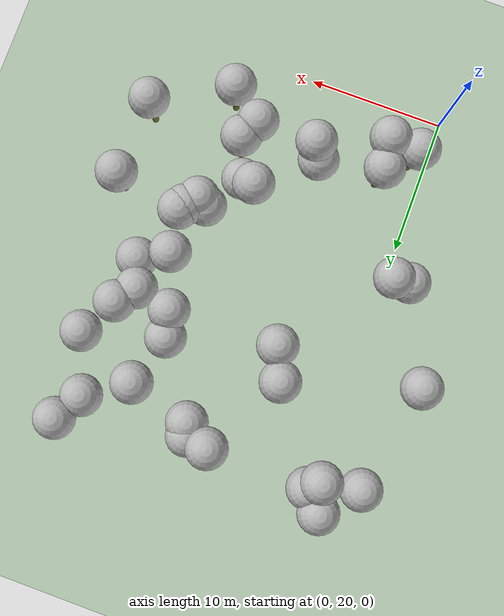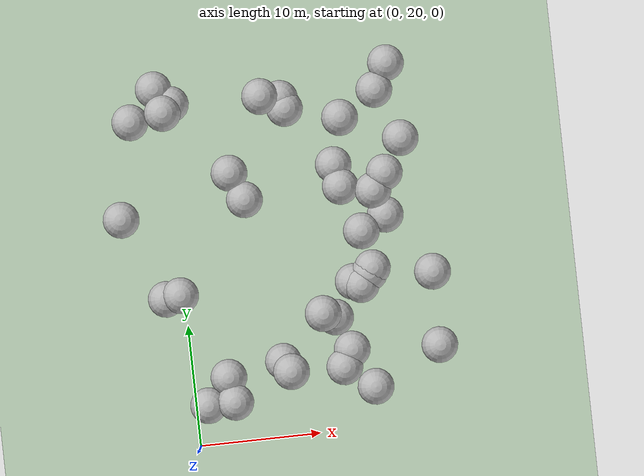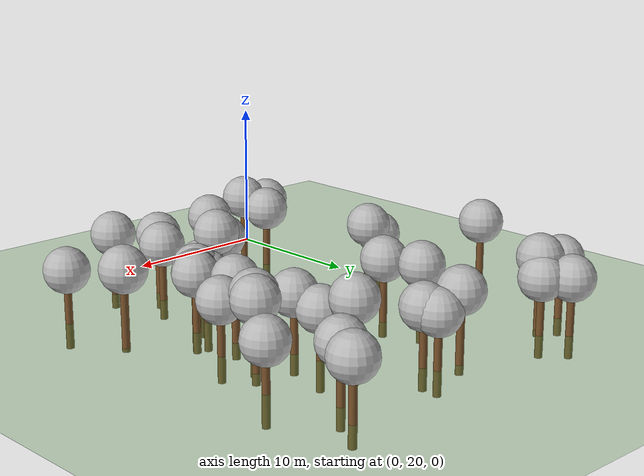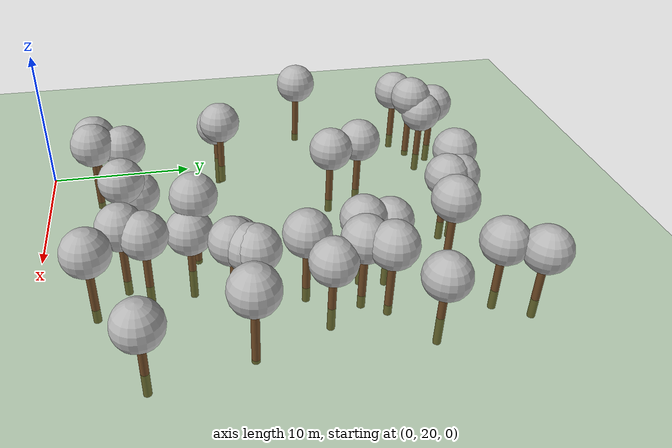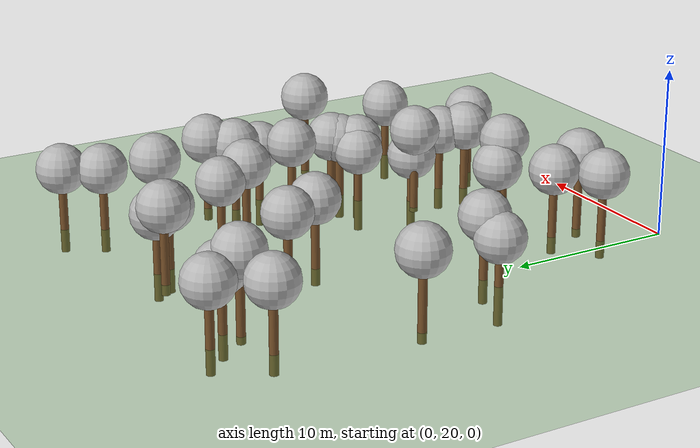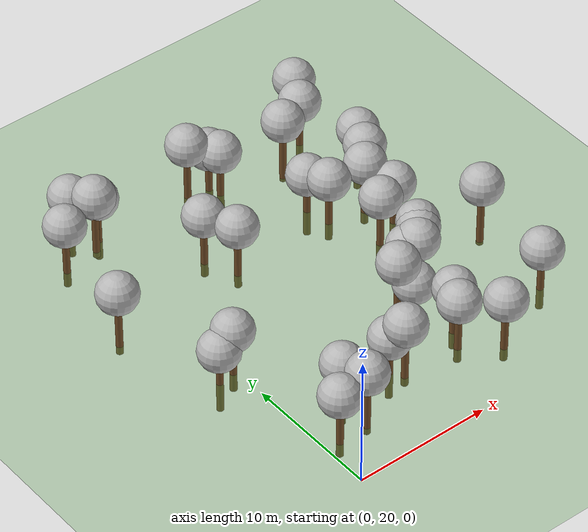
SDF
<sdf version="1.5">
 <world name="default">
  <model name="tree_simple477">
   <static>1</static>
   <link name="link">
    <pose>0 0 0.1 0 -0 0</pose>
    <collision name="collision_trunk">
     <pose>0 0 2 0 -0 0</pose>
     <geometry><cylinder><radius>0.25</radius><length>4</length></cylinder></geometry>
    </collision>
    <collision name="collision_treetop">
     <pose>0 0 5.2 0 -0 0</pose>
     <geometry><sphere><radius>1.5</radius></sphere></geometry>
    </collision>
    <visual name="trunk">
     <pose>0 0 2 0 -0 0</pose>
     <geometry><cylinder><radius>0.25</radius><length>4</length></cylinder></geometry>
     <material>
      <script>
       <uri>model://tree_simple/scripts</uri>
       <uri>model://tree_simple/materials/textures</uri>
       <name>TreeSimple/Trunk</name>
      </script>
     </material>
    </visual>
    <visual name="treetop">
     <pose>0 0 5.2 0 -0 0</pose>
     <geometry><sphere><radius>1.5</radius></sphere></geometry>
     <material>
      <script>
       <uri>model://tree_simple/scripts</uri>
       <uri>model://tree_simple/materials/textures</uri>
       <name>TreeSimple/Treetop</name>
      </script>
     </material>
    </visual>
   </link>
   <pose>-0.22927085135 32.6495918535 -1.5772530974305565 0 -0 0</pose>
  </model>
  <model name="tree_simple457">
   <static>1</static>
   <link name="link">
    <pose>0 0 0.1 0 -0 0</pose>
    <collision name="collision_trunk">
     <pose>0 0 2 0 -0 0</pose>
     <geometry><cylinder><radius>0.25</radius><length>4</length></cylinder></geometry>
    </collision>
    <collision name="collision_treetop">
     <pose>0 0 5.2 0 -0 0</pose>
     <geometry><sphere><radius>1.5</radius></sphere></geometry>
    </collision>
    <visual name="trunk">
     <pose>0 0 2 0 -0 0</pose>
     <geometry><cylinder><radius>0.25</radius><length>4</length></cylinder></geometry>
     <material>
      <script>
       <uri>model://tree_simple/scripts</uri>
       <uri>model://tree_simple/materials/textures</uri>
       <name>TreeSimple/Trunk</name>
      </script>
     </material>
    </visual>
    <visual name="treetop">
     <pose>0 0 5.2 0 -0 0</pose>
     <geometry><sphere><radius>1.5</radius></sphere></geometry>
     <material>
      <script>
       <uri>model://tree_simple/scripts</uri>
       <uri>model://tree_simple/materials/textures</uri>
       <name>TreeSimple/Treetop</name>
      </script>
     </material>
    </visual>
   </link>
   <pose>13.2865883098 26.7984826025 -1.4923360255786282 0 -0 0</pose>
  </model>
  <model name="tree_simple445">
   <static>1</static>
   <link name="link">
    <pose>0 0 0.1 0 -0 0</pose>
    <collision name="collision_trunk">
     <pose>0 0 2 0 -0 0</pose>
     <geometry><cylinder><radius>0.25</radius><length>4</length></cylinder></geometry>
    </collision>
    <collision name="collision_treetop">
     <pose>0 0 5.2 0 -0 0</pose>
     <geometry><sphere><radius>1.5</radius></sphere></geometry>
    </collision>
    <visual name="trunk">
     <pose>0 0 2 0 -0 0</pose>
     <geometry><cylinder><radius>0.25</radius><length>4</length></cylinder></geometry>
     <material>
      <script>
       <uri>model://tree_simple/scripts</uri>
       <uri>model://tree_simple/materials/textures</uri>
       <name>TreeSimple/Trunk</name>
      </script>
     </material>
    </visual>
    <visual name="treetop">
     <pose>0 0 5.2 0 -0 0</pose>
     <geometry><sphere><radius>1.5</radius></sphere></geometry>
     <material>
      <script>
       <uri>model://tree_simple/scripts</uri>
       <uri>model://tree_simple/materials/textures</uri>
       <name>TreeSimple/Treetop</name>
      </script>
     </material>
    </visual>
   </link>
   <pose>17.3330924595 47.7477611906 -1.5642693876406155 0 -0 0</pose>
  </model>
  <model name="tree_simple443">
   <static>1</static>
   <link name="link">
    <pose>0 0 0.1 0 -0 0</pose>
    <collision name="collision_trunk">
     <pose>0 0 2 0 -0 0</pose>
     <geometry><cylinder><radius>0.25</radius><length>4</length></cylinder></geometry>
    </collision>
    <collision name="collision_treetop">
     <pose>0 0 5.2 0 -0 0</pose>
     <geometry><sphere><radius>1.5</radius></sphere></geometry>
    </collision>
    <visual name="trunk">
     <pose>0 0 2 0 -0 0</pose>
     <geometry><cylinder><radius>0.25</radius><length>4</length></cylinder></geometry>
     <material>
      <script>
       <uri>model://tree_simple/scripts</uri>
       <uri>model://tree_simple/materials/textures</uri>
       <name>TreeSimple/Trunk</name>
      </script>
     </material>
    </visual>
    <visual name="treetop">
     <pose>0 0 5.2 0 -0 0</pose>
     <geometry><sphere><radius>1.5</radius></sphere></geometry>
     <material>
      <script>
       <uri>model://tree_simple/scripts</uri>
       <uri>model://tree_simple/materials/textures</uri>
       <name>TreeSimple/Treetop</name>
      </script>
     </material>
    </visual>
   </link>
   <pose>20.4518447393 32.4372971603 -0.3842640488169702 0 -0 0</pose>
  </model>
  <model name="tree_simple419">
   <static>1</static>
   <link name="link">
    <pose>0 0 0.1 0 -0 0</pose>
    <collision name="collision_trunk">
     <pose>0 0 2 0 -0 0</pose>
     <geometry><cylinder><radius>0.25</radius><length>4</length></cylinder></geometry>
    </collision>
    <collision name="collision_treetop">
     <pose>0 0 5.2 0 -0 0</pose>
     <geometry><sphere><radius>1.5</radius></sphere></geometry>
    </collision>
    <visual name="trunk">
     <pose>0 0 2 0 -0 0</pose>
     <geometry><cylinder><radius>0.25</radius><length>4</length></cylinder></geometry>
     <material>
      <script>
       <uri>model://tree_simple/scripts</uri>
       <uri>model://tree_simple/materials/textures</uri>
       <name>TreeSimple/Trunk</name>
      </script>
     </material>
    </visual>
    <visual name="treetop">
     <pose>0 0 5.2 0 -0 0</pose>
     <geometry><sphere><radius>1.5</radius></sphere></geometry>
     <material>
      <script>
       <uri>model://tree_simple/scripts</uri>
       <uri>model://tree_simple/materials/textures</uri>
       <name>TreeSimple/Treetop</name>
      </script>
     </material>
    </visual>
   </link>
   <pose>15.0608261067 36.3391301174 -1.2262519506020633 0 -0 0</pose>
  </model>
  <model name="tree_simple413">
   <static>1</static>
   <link name="link">
    <pose>0 0 0.1 0 -0 0</pose>
    <collision name="collision_trunk">
     <pose>0 0 2 0 -0 0</pose>
     <geometry><cylinder><radius>0.25</radius><length>4</length></cylinder></geometry>
    </collision>
    <collision name="collision_treetop">
     <pose>0 0 5.2 0 -0 0</pose>
     <geometry><sphere><radius>1.5</radius></sphere></geometry>
    </collision>
    <visual name="trunk">
     <pose>0 0 2 0 -0 0</pose>
     <geometry><cylinder><radius>0.25</radius><length>4</length></cylinder></geometry>
     <material>
      <script>
       <uri>model://tree_simple/scripts</uri>
       <uri>model://tree_simple/materials/textures</uri>
       <name>TreeSimple/Trunk</name>
      </script>
     </material>
    </visual>
    <visual name="treetop">
     <pose>0 0 5.2 0 -0 0</pose>
     <geometry><sphere><radius>1.5</radius></sphere></geometry>
     <material>
      <script>
       <uri>model://tree_simple/scripts</uri>
       <uri>model://tree_simple/materials/textures</uri>
       <name>TreeSimple/Treetop</name>
      </script>
     </material>
    </visual>
   </link>
   <pose>4.79772995732 42.1907919742 -1.2238925994554648 0 -0 0</pose>
  </model>
  <model name="tree_simple405">
   <static>1</static>
   <link name="link">
    <pose>0 0 0.1 0 -0 0</pose>
    <collision name="collision_trunk">
     <pose>0 0 2 0 -0 0</pose>
     <geometry><cylinder><radius>0.25</radius><length>4</length></cylinder></geometry>
    </collision>
    <collision name="collision_treetop">
     <pose>0 0 5.2 0 -0 0</pose>
     <geometry><sphere><radius>1.5</radius></sphere></geometry>
    </collision>
    <visual name="trunk">
     <pose>0 0 2 0 -0 0</pose>
     <geometry><cylinder><radius>0.25</radius><length>4</length></cylinder></geometry>
     <material>
      <script>
       <uri>model://tree_simple/scripts</uri>
       <uri>model://tree_simple/materials/textures</uri>
       <name>TreeSimple/Trunk</name>
      </script>
     </material>
    </visual>
    <visual name="treetop">
     <pose>0 0 5.2 0 -0 0</pose>
     <geometry><sphere><radius>1.5</radius></sphere></geometry>
     <material>
      <script>
       <uri>model://tree_simple/scripts</uri>
       <uri>model://tree_simple/materials/textures</uri>
       <name>TreeSimple/Treetop</name>
      </script>
     </material>
    </visual>
   </link>
   <pose>13.9640568795 32.2793272532 -2.0949176637792855 0 -0 0</pose>
  </model>
  <model name="tree_simple401">
   <static>1</static>
   <link name="link">
    <pose>0 0 0.1 0 -0 0</pose>
    <collision name="collision_trunk">
     <pose>0 0 2 0 -0 0</pose>
     <geometry><cylinder><radius>0.25</radius><length>4</length></cylinder></geometry>
    </collision>
    <collision name="collision_treetop">
     <pose>0 0 5.2 0 -0 0</pose>
     <geometry><sphere><radius>1.5</radius></sphere></geometry>
    </collision>
    <visual name="trunk">
     <pose>0 0 2 0 -0 0</pose>
     <geometry><cylinder><radius>0.25</radius><length>4</length></cylinder></geometry>
     <material>
      <script>
       <uri>model://tree_simple/scripts</uri>
       <uri>model://tree_simple/materials/textures</uri>
       <name>TreeSimple/Trunk</name>
      </script>
     </material>
    </visual>
    <visual name="treetop">
     <pose>0 0 5.2 0 -0 0</pose>
     <geometry><sphere><radius>1.5</radius></sphere></geometry>
     <material>
      <script>
       <uri>model://tree_simple/scripts</uri>
       <uri>model://tree_simple/materials/textures</uri>
       <name>TreeSimple/Treetop</name>
      </script>
     </material>
    </visual>
   </link>
   <pose>18.5119614972 49.8300347258 -1.5573048596666181 0 -0 0</pose>
  </model>
  <model name="tree_simple381">
   <static>1</static>
   <link name="link">
    <pose>0 0 0.1 0 -0 0</pose>
    <collision name="collision_trunk">
     <pose>0 0 2 0 -0 0</pose>
     <geometry><cylinder><radius>0.25</radius><length>4</length></cylinder></geometry>
    </collision>
    <collision name="collision_treetop">
     <pose>0 0 5.2 0 -0 0</pose>
     <geometry><sphere><radius>1.5</radius></sphere></geometry>
    </collision>
    <visual name="trunk">
     <pose>0 0 2 0 -0 0</pose>
     <geometry><cylinder><radius>0.25</radius><length>4</length></cylinder></geometry>
     <material>
      <script>
       <uri>model://tree_simple/scripts</uri>
       <uri>model://tree_simple/materials/textures</uri>
       <name>TreeSimple/Trunk</name>
      </script>
     </material>
    </visual>
    <visual name="treetop">
     <pose>0 0 5.2 0 -0 0</pose>
     <geometry><sphere><radius>1.5</radius></sphere></geometry>
     <material>
      <script>
       <uri>model://tree_simple/scripts</uri>
       <uri>model://tree_simple/materials/textures</uri>
       <name>TreeSimple/Treetop</name>
      </script>
     </material>
    </visual>
   </link>
   <pose>14.598493672 31.9609585056 -1.598801833825723 0 -0 0</pose>
  </model>
  <model name="tree_simple372">
   <static>1</static>
   <link name="link">
    <pose>0 0 0.1 0 -0 0</pose>
    <collision name="collision_trunk">
     <pose>0 0 2 0 -0 0</pose>
     <geometry><cylinder><radius>0.25</radius><length>4</length></cylinder></geometry>
    </collision>
    <collision name="collision_treetop">
     <pose>0 0 5.2 0 -0 0</pose>
     <geometry><sphere><radius>1.5</radius></sphere></geometry>
    </collision>
    <visual name="trunk">
     <pose>0 0 2 0 -0 0</pose>
     <geometry><cylinder><radius>0.25</radius><length>4</length></cylinder></geometry>
     <material>
      <script>
       <uri>model://tree_simple/scripts</uri>
       <uri>model://tree_simple/materials/textures</uri>
       <name>TreeSimple/Trunk</name>
      </script>
     </material>
    </visual>
    <visual name="treetop">
     <pose>0 0 5.2 0 -0 0</pose>
     <geometry><sphere><radius>1.5</radius></sphere></geometry>
     <material>
      <script>
       <uri>model://tree_simple/scripts</uri>
       <uri>model://tree_simple/materials/textures</uri>
       <name>TreeSimple/Treetop</name>
      </script>
     </material>
    </visual>
   </link>
   <pose>19.0807104519 43.6051965294 -2.2103653135912835 0 -0 0</pose>
  </model>
  <model name="tree_simple367">
   <static>1</static>
   <link name="link">
    <pose>0 0 0.1 0 -0 0</pose>
    <collision name="collision_trunk">
     <pose>0 0 2 0 -0 0</pose>
     <geometry><cylinder><radius>0.25</radius><length>4</length></cylinder></geometry>
    </collision>
    <collision name="collision_treetop">
     <pose>0 0 5.2 0 -0 0</pose>
     <geometry><sphere><radius>1.5</radius></sphere></geometry>
    </collision>
    <visual name="trunk">
     <pose>0 0 2 0 -0 0</pose>
     <geometry><cylinder><radius>0.25</radius><length>4</length></cylinder></geometry>
     <material>
      <script>
       <uri>model://tree_simple/scripts</uri>
       <uri>model://tree_simple/materials/textures</uri>
       <name>TreeSimple/Trunk</name>
      </script>
     </material>
    </visual>
    <visual name="treetop">
     <pose>0 0 5.2 0 -0 0</pose>
     <geometry><sphere><radius>1.5</radius></sphere></geometry>
     <material>
      <script>
       <uri>model://tree_simple/scripts</uri>
       <uri>model://tree_simple/materials/textures</uri>
       <name>TreeSimple/Treetop</name>
      </script>
     </material>
    </visual>
   </link>
   <pose>14.2659299001 45.7179827091 -0.38302326977098944 0 -0 0</pose>
  </model>
  <model name="tree_simple365">
   <static>1</static>
   <link name="link">
    <pose>0 0 0.1 0 -0 0</pose>
    <collision name="collision_trunk">
     <pose>0 0 2 0 -0 0</pose>
     <geometry><cylinder><radius>0.25</radius><length>4</length></cylinder></geometry>
    </collision>
    <collision name="collision_treetop">
     <pose>0 0 5.2 0 -0 0</pose>
     <geometry><sphere><radius>1.5</radius></sphere></geometry>
    </collision>
    <visual name="trunk">
     <pose>0 0 2 0 -0 0</pose>
     <geometry><cylinder><radius>0.25</radius><length>4</length></cylinder></geometry>
     <material>
      <script>
       <uri>model://tree_simple/scripts</uri>
       <uri>model://tree_simple/materials/textures</uri>
       <name>TreeSimple/Trunk</name>
      </script>
     </material>
    </visual>
    <visual name="treetop">
     <pose>0 0 5.2 0 -0 0</pose>
     <geometry><sphere><radius>1.5</radius></sphere></geometry>
     <material>
      <script>
       <uri>model://tree_simple/scripts</uri>
       <uri>model://tree_simple/materials/textures</uri>
       <name>TreeSimple/Treetop</name>
      </script>
     </material>
    </visual>
   </link>
   <pose>7.96669325113 48.1339153876 -0.7691764376662982 0 -0 0</pose>
  </model>
  <model name="tree_simple356">
   <static>1</static>
   <link name="link">
    <pose>0 0 0.1 0 -0 0</pose>
    <collision name="collision_trunk">
     <pose>0 0 2 0 -0 0</pose>
     <geometry><cylinder><radius>0.25</radius><length>4</length></cylinder></geometry>
    </collision>
    <collision name="collision_treetop">
     <pose>0 0 5.2 0 -0 0</pose>
     <geometry><sphere><radius>1.5</radius></sphere></geometry>
    </collision>
    <visual name="trunk">
     <pose>0 0 2 0 -0 0</pose>
     <geometry><cylinder><radius>0.25</radius><length>4</length></cylinder></geometry>
     <material>
      <script>
       <uri>model://tree_simple/scripts</uri>
       <uri>model://tree_simple/materials/textures</uri>
       <name>TreeSimple/Trunk</name>
      </script>
     </material>
    </visual>
    <visual name="treetop">
     <pose>0 0 5.2 0 -0 0</pose>
     <geometry><sphere><radius>1.5</radius></sphere></geometry>
     <material>
      <script>
       <uri>model://tree_simple/scripts</uri>
       <uri>model://tree_simple/materials/textures</uri>
       <name>TreeSimple/Treetop</name>
      </script>
     </material>
    </visual>
   </link>
   <pose>-2.83030100633 47.164879459 -1.314871127142799 0 -0 0</pose>
  </model>
  <model name="tree_simple340">
   <static>1</static>
   <link name="link">
    <pose>0 0 0.1 0 -0 0</pose>
    <collision name="collision_trunk">
     <pose>0 0 2 0 -0 0</pose>
     <geometry><cylinder><radius>0.25</radius><length>4</length></cylinder></geometry>
    </collision>
    <collision name="collision_treetop">
     <pose>0 0 5.2 0 -0 0</pose>
     <geometry><sphere><radius>1.5</radius></sphere></geometry>
    </collision>
    <visual name="trunk">
     <pose>0 0 2 0 -0 0</pose>
     <geometry><cylinder><radius>0.25</radius><length>4</length></cylinder></geometry>
     <material>
      <script>
       <uri>model://tree_simple/scripts</uri>
       <uri>model://tree_simple/materials/textures</uri>
       <name>TreeSimple/Trunk</name>
      </script>
     </material>
    </visual>
    <visual name="treetop">
     <pose>0 0 5.2 0 -0 0</pose>
     <geometry><sphere><radius>1.5</radius></sphere></geometry>
     <material>
      <script>
       <uri>model://tree_simple/scripts</uri>
       <uri>model://tree_simple/materials/textures</uri>
       <name>TreeSimple/Treetop</name>
      </script>
     </material>
    </visual>
   </link>
   <pose>15.6359324045 33.2415832038 -1.5299235645291382 0 -0 0</pose>
  </model>
  <model name="tree_simple339">
   <static>1</static>
   <link name="link">
    <pose>0 0 0.1 0 -0 0</pose>
    <collision name="collision_trunk">
     <pose>0 0 2 0 -0 0</pose>
     <geometry><cylinder><radius>0.25</radius><length>4</length></cylinder></geometry>
    </collision>
    <collision name="collision_treetop">
     <pose>0 0 5.2 0 -0 0</pose>
     <geometry><sphere><radius>1.5</radius></sphere></geometry>
    </collision>
    <visual name="trunk">
     <pose>0 0 2 0 -0 0</pose>
     <geometry><cylinder><radius>0.25</radius><length>4</length></cylinder></geometry>
     <material>
      <script>
       <uri>model://tree_simple/scripts</uri>
       <uri>model://tree_simple/materials/textures</uri>
       <name>TreeSimple/Trunk</name>
      </script>
     </material>
    </visual>
    <visual name="treetop">
     <pose>0 0 5.2 0 -0 0</pose>
     <geometry><sphere><radius>1.5</radius></sphere></geometry>
     <material>
      <script>
       <uri>model://tree_simple/scripts</uri>
       <uri>model://tree_simple/materials/textures</uri>
       <name>TreeSimple/Treetop</name>
      </script>
     </material>
    </visual>
   </link>
   <pose>8.14193712957 25.5166560065 -0.8094243644676342 0 -0 0</pose>
  </model>
  <model name="tree_simple328">
   <static>1</static>
   <link name="link">
    <pose>0 0 0.1 0 -0 0</pose>
    <collision name="collision_trunk">
     <pose>0 0 2 0 -0 0</pose>
     <geometry><cylinder><radius>0.25</radius><length>4</length></cylinder></geometry>
    </collision>
    <collision name="collision_treetop">
     <pose>0 0 5.2 0 -0 0</pose>
     <geometry><sphere><radius>1.5</radius></sphere></geometry>
    </collision>
    <visual name="trunk">
     <pose>0 0 2 0 -0 0</pose>
     <geometry><cylinder><radius>0.25</radius><length>4</length></cylinder></geometry>
     <material>
      <script>
       <uri>model://tree_simple/scripts</uri>
       <uri>model://tree_simple/materials/textures</uri>
       <name>TreeSimple/Trunk</name>
      </script>
     </material>
    </visual>
    <visual name="treetop">
     <pose>0 0 5.2 0 -0 0</pose>
     <geometry><sphere><radius>1.5</radius></sphere></geometry>
     <material>
      <script>
       <uri>model://tree_simple/scripts</uri>
       <uri>model://tree_simple/materials/textures</uri>
       <name>TreeSimple/Treetop</name>
      </script>
     </material>
    </visual>
   </link>
   <pose>3.34573808519 23.5188113382 -0.657845791410022 0 -0 0</pose>
  </model>
  <model name="tree_simple325">
   <static>1</static>
   <link name="link">
    <pose>0 0 0.1 0 -0 0</pose>
    <collision name="collision_trunk">
     <pose>0 0 2 0 -0 0</pose>
     <geometry><cylinder><radius>0.25</radius><length>4</length></cylinder></geometry>
    </collision>
    <collision name="collision_treetop">
     <pose>0 0 5.2 0 -0 0</pose>
     <geometry><sphere><radius>1.5</radius></sphere></geometry>
    </collision>
    <visual name="trunk">
     <pose>0 0 2 0 -0 0</pose>
     <geometry><cylinder><radius>0.25</radius><length>4</length></cylinder></geometry>
     <material>
      <script>
       <uri>model://tree_simple/scripts</uri>
       <uri>model://tree_simple/materials/textures</uri>
       <name>TreeSimple/Trunk</name>
      </script>
     </material>
    </visual>
    <visual name="treetop">
     <pose>0 0 5.2 0 -0 0</pose>
     <geometry><sphere><radius>1.5</radius></sphere></geometry>
     <material>
      <script>
       <uri>model://tree_simple/scripts</uri>
       <uri>model://tree_simple/materials/textures</uri>
       <name>TreeSimple/Treetop</name>
      </script>
     </material>
    </visual>
   </link>
   <pose>16.3512762839 39.5353955834 -1.0922748074034836 0 -0 0</pose>
  </model>
  <model name="tree_simple320">
   <static>1</static>
   <link name="link">
    <pose>0 0 0.1 0 -0 0</pose>
    <collision name="collision_trunk">
     <pose>0 0 2 0 -0 0</pose>
     <geometry><cylinder><radius>0.25</radius><length>4</length></cylinder></geometry>
    </collision>
    <collision name="collision_treetop">
     <pose>0 0 5.2 0 -0 0</pose>
     <geometry><sphere><radius>1.5</radius></sphere></geometry>
    </collision>
    <visual name="trunk">
     <pose>0 0 2 0 -0 0</pose>
     <geometry><cylinder><radius>0.25</radius><length>4</length></cylinder></geometry>
     <material>
      <script>
       <uri>model://tree_simple/scripts</uri>
       <uri>model://tree_simple/materials/textures</uri>
       <name>TreeSimple/Trunk</name>
      </script>
     </material>
    </visual>
    <visual name="treetop">
     <pose>0 0 5.2 0 -0 0</pose>
     <geometry><sphere><radius>1.5</radius></sphere></geometry>
     <material>
      <script>
       <uri>model://tree_simple/scripts</uri>
       <uri>model://tree_simple/materials/textures</uri>
       <name>TreeSimple/Treetop</name>
      </script>
     </material>
    </visual>
   </link>
   <pose>17.4267796311 40.9028236297 -0.901711251148849 0 -0 0</pose>
  </model>
  <model name="tree_simple302">
   <static>1</static>
   <link name="link">
    <pose>0 0 0.1 0 -0 0</pose>
    <collision name="collision_trunk">
     <pose>0 0 2 0 -0 0</pose>
     <geometry><cylinder><radius>0.25</radius><length>4</length></cylinder></geometry>
    </collision>
    <collision name="collision_treetop">
     <pose>0 0 5.2 0 -0 0</pose>
     <geometry><sphere><radius>1.5</radius></sphere></geometry>
    </collision>
    <visual name="trunk">
     <pose>0 0 2 0 -0 0</pose>
     <geometry><cylinder><radius>0.25</radius><length>4</length></cylinder></geometry>
     <material>
      <script>
       <uri>model://tree_simple/scripts</uri>
       <uri>model://tree_simple/materials/textures</uri>
       <name>TreeSimple/Trunk</name>
      </script>
     </material>
    </visual>
    <visual name="treetop">
     <pose>0 0 5.2 0 -0 0</pose>
     <geometry><sphere><radius>1.5</radius></sphere></geometry>
     <material>
      <script>
       <uri>model://tree_simple/scripts</uri>
       <uri>model://tree_simple/materials/textures</uri>
       <name>TreeSimple/Treetop</name>
      </script>
     </material>
    </visual>
   </link>
   <pose>-4.36833306423 39.3035065939 -0.7679518951057651 0 -0 0</pose>
  </model>
  <model name="tree_simple299">
   <static>1</static>
   <link name="link">
    <pose>0 0 0.1 0 -0 0</pose>
    <collision name="collision_trunk">
     <pose>0 0 2 0 -0 0</pose>
     <geometry><cylinder><radius>0.25</radius><length>4</length></cylinder></geometry>
    </collision>
    <collision name="collision_treetop">
     <pose>0 0 5.2 0 -0 0</pose>
     <geometry><sphere><radius>1.5</radius></sphere></geometry>
    </collision>
    <visual name="trunk">
     <pose>0 0 2 0 -0 0</pose>
     <geometry><cylinder><radius>0.25</radius><length>4</length></cylinder></geometry>
     <material>
      <script>
       <uri>model://tree_simple/scripts</uri>
       <uri>model://tree_simple/materials/textures</uri>
       <name>TreeSimple/Trunk</name>
      </script>
     </material>
    </visual>
    <visual name="treetop">
     <pose>0 0 5.2 0 -0 0</pose>
     <geometry><sphere><radius>1.5</radius></sphere></geometry>
     <material>
      <script>
       <uri>model://tree_simple/scripts</uri>
       <uri>model://tree_simple/materials/textures</uri>
       <name>TreeSimple/Treetop</name>
      </script>
     </material>
    </visual>
   </link>
   <pose>-1.46806320409 32.459422197 -2.4699976208925882 0 -0 0</pose>
  </model>
  <model name="tree_simple287">
   <static>1</static>
   <link name="link">
    <pose>0 0 0.1 0 -0 0</pose>
    <collision name="collision_trunk">
     <pose>0 0 2 0 -0 0</pose>
     <geometry><cylinder><radius>0.25</radius><length>4</length></cylinder></geometry>
    </collision>
    <collision name="collision_treetop">
     <pose>0 0 5.2 0 -0 0</pose>
     <geometry><sphere><radius>1.5</radius></sphere></geometry>
    </collision>
    <visual name="trunk">
     <pose>0 0 2 0 -0 0</pose>
     <geometry><cylinder><radius>0.25</radius><length>4</length></cylinder></geometry>
     <material>
      <script>
       <uri>model://tree_simple/scripts</uri>
       <uri>model://tree_simple/materials/textures</uri>
       <name>TreeSimple/Trunk</name>
      </script>
     </material>
    </visual>
    <visual name="treetop">
     <pose>0 0 5.2 0 -0 0</pose>
     <geometry><sphere><radius>1.5</radius></sphere></geometry>
     <material>
      <script>
       <uri>model://tree_simple/scripts</uri>
       <uri>model://tree_simple/materials/textures</uri>
       <name>TreeSimple/Treetop</name>
      </script>
     </material>
    </visual>
   </link>
   <pose>5.81960290033 39.8953620518 -1.160731434219491 0 -0 0</pose>
  </model>
  <model name="tree_simple275">
   <static>1</static>
   <link name="link">
    <pose>0 0 0.1 0 -0 0</pose>
    <collision name="collision_trunk">
     <pose>0 0 2 0 -0 0</pose>
     <geometry><cylinder><radius>0.25</radius><length>4</length></cylinder></geometry>
    </collision>
    <collision name="collision_treetop">
     <pose>0 0 5.2 0 -0 0</pose>
     <geometry><sphere><radius>1.5</radius></sphere></geometry>
    </collision>
    <visual name="trunk">
     <pose>0 0 2 0 -0 0</pose>
     <geometry><cylinder><radius>0.25</radius><length>4</length></cylinder></geometry>
     <material>
      <script>
       <uri>model://tree_simple/scripts</uri>
       <uri>model://tree_simple/materials/textures</uri>
       <name>TreeSimple/Trunk</name>
      </script>
     </material>
    </visual>
    <visual name="treetop">
     <pose>0 0 5.2 0 -0 0</pose>
     <geometry><sphere><radius>1.5</radius></sphere></geometry>
     <material>
      <script>
       <uri>model://tree_simple/scripts</uri>
       <uri>model://tree_simple/materials/textures</uri>
       <name>TreeSimple/Treetop</name>
      </script>
     </material>
    </visual>
   </link>
   <pose>11.2194181464 29.9629539421 -0.4061772380053218 0 -0 0</pose>
  </model>
  <model name="tree_simple273">
   <static>1</static>
   <link name="link">
    <pose>0 0 0.1 0 -0 0</pose>
    <collision name="collision_trunk">
     <pose>0 0 2 0 -0 0</pose>
     <geometry><cylinder><radius>0.25</radius><length>4</length></cylinder></geometry>
    </collision>
    <collision name="collision_treetop">
     <pose>0 0 5.2 0 -0 0</pose>
     <geometry><sphere><radius>1.5</radius></sphere></geometry>
    </collision>
    <visual name="trunk">
     <pose>0 0 2 0 -0 0</pose>
     <geometry><cylinder><radius>0.25</radius><length>4</length></cylinder></geometry>
     <material>
      <script>
       <uri>model://tree_simple/scripts</uri>
       <uri>model://tree_simple/materials/textures</uri>
       <name>TreeSimple/Trunk</name>
      </script>
     </material>
    </visual>
    <visual name="treetop">
     <pose>0 0 5.2 0 -0 0</pose>
     <geometry><sphere><radius>1.5</radius></sphere></geometry>
     <material>
      <script>
       <uri>model://tree_simple/scripts</uri>
       <uri>model://tree_simple/materials/textures</uri>
       <name>TreeSimple/Treetop</name>
      </script>
     </material>
    </visual>
   </link>
   <pose>0.615452914857 48.3188405116 -1.6154694499596949 0 -0 0</pose>
  </model>
  <model name="tree_simple260">
   <static>1</static>
   <link name="link">
    <pose>0 0 0.1 0 -0 0</pose>
    <collision name="collision_trunk">
     <pose>0 0 2 0 -0 0</pose>
     <geometry><cylinder><radius>0.25</radius><length>4</length></cylinder></geometry>
    </collision>
    <collision name="collision_treetop">
     <pose>0 0 5.2 0 -0 0</pose>
     <geometry><sphere><radius>1.5</radius></sphere></geometry>
    </collision>
    <visual name="trunk">
     <pose>0 0 2 0 -0 0</pose>
     <geometry><cylinder><radius>0.25</radius><length>4</length></cylinder></geometry>
     <material>
      <script>
       <uri>model://tree_simple/scripts</uri>
       <uri>model://tree_simple/materials/textures</uri>
       <name>TreeSimple/Trunk</name>
      </script>
     </material>
    </visual>
    <visual name="treetop">
     <pose>0 0 5.2 0 -0 0</pose>
     <geometry><sphere><radius>1.5</radius></sphere></geometry>
     <material>
      <script>
       <uri>model://tree_simple/scripts</uri>
       <uri>model://tree_simple/materials/textures</uri>
       <name>TreeSimple/Treetop</name>
      </script>
     </material>
    </visual>
   </link>
   <pose>20.4747246255 26.3739745209 -1.815932860001503 0 -0 0</pose>
  </model>
  <model name="tree_simple254">
   <static>1</static>
   <link name="link">
    <pose>0 0 0.1 0 -0 0</pose>
    <collision name="collision_trunk">
     <pose>0 0 2 0 -0 0</pose>
     <geometry><cylinder><radius>0.25</radius><length>4</length></cylinder></geometry>
    </collision>
    <collision name="collision_treetop">
     <pose>0 0 5.2 0 -0 0</pose>
     <geometry><sphere><radius>1.5</radius></sphere></geometry>
    </collision>
    <visual name="trunk">
     <pose>0 0 2 0 -0 0</pose>
     <geometry><cylinder><radius>0.25</radius><length>4</length></cylinder></geometry>
     <material>
      <script>
       <uri>model://tree_simple/scripts</uri>
       <uri>model://tree_simple/materials/textures</uri>
       <name>TreeSimple/Trunk</name>
      </script>
     </material>
    </visual>
    <visual name="treetop">
     <pose>0 0 5.2 0 -0 0</pose>
     <geometry><sphere><radius>1.5</radius></sphere></geometry>
     <material>
      <script>
       <uri>model://tree_simple/scripts</uri>
       <uri>model://tree_simple/materials/textures</uri>
       <name>TreeSimple/Treetop</name>
      </script>
     </material>
    </visual>
   </link>
   <pose>13.3684370787 41.9999258399 -2.161345922510667 0 -0 0</pose>
  </model>
  <model name="tree_simple229">
   <static>1</static>
   <link name="link">
    <pose>0 0 0.1 0 -0 0</pose>
    <collision name="collision_trunk">
     <pose>0 0 2 0 -0 0</pose>
     <geometry><cylinder><radius>0.25</radius><length>4</length></cylinder></geometry>
    </collision>
    <collision name="collision_treetop">
     <pose>0 0 5.2 0 -0 0</pose>
     <geometry><sphere><radius>1.5</radius></sphere></geometry>
    </collision>
    <visual name="trunk">
     <pose>0 0 2 0 -0 0</pose>
     <geometry><cylinder><radius>0.25</radius><length>4</length></cylinder></geometry>
     <material>
      <script>
       <uri>model://tree_simple/scripts</uri>
       <uri>model://tree_simple/materials/textures</uri>
       <name>TreeSimple/Trunk</name>
      </script>
     </material>
    </visual>
    <visual name="treetop">
     <pose>0 0 5.2 0 -0 0</pose>
     <geometry><sphere><radius>1.5</radius></sphere></geometry>
     <material>
      <script>
       <uri>model://tree_simple/scripts</uri>
       <uri>model://tree_simple/materials/textures</uri>
       <name>TreeSimple/Treetop</name>
      </script>
     </material>
    </visual>
   </link>
   <pose>17.1703693381 37.4765229217 -1.8437898992636002 0 -0 0</pose>
  </model>
  <model name="tree_simple196">
   <static>1</static>
   <link name="link">
    <pose>0 0 0.1 0 -0 0</pose>
    <collision name="collision_trunk">
     <pose>0 0 2 0 -0 0</pose>
     <geometry><cylinder><radius>0.25</radius><length>4</length></cylinder></geometry>
    </collision>
    <collision name="collision_treetop">
     <pose>0 0 5.2 0 -0 0</pose>
     <geometry><sphere><radius>1.5</radius></sphere></geometry>
    </collision>
    <visual name="trunk">
     <pose>0 0 2 0 -0 0</pose>
     <geometry><cylinder><radius>0.25</radius><length>4</length></cylinder></geometry>
     <material>
      <script>
       <uri>model://tree_simple/scripts</uri>
       <uri>model://tree_simple/materials/textures</uri>
       <name>TreeSimple/Trunk</name>
      </script>
     </material>
    </visual>
    <visual name="treetop">
     <pose>0 0 5.2 0 -0 0</pose>
     <geometry><sphere><radius>1.5</radius></sphere></geometry>
     <material>
      <script>
       <uri>model://tree_simple/scripts</uri>
       <uri>model://tree_simple/materials/textures</uri>
       <name>TreeSimple/Treetop</name>
      </script>
     </material>
    </visual>
   </link>
   <pose>13.7422198568 40.1413468751 -1.5285785099747764 0 -0 0</pose>
  </model>
  <model name="tree_simple189">
   <static>1</static>
   <link name="link">
    <pose>0 0 0.1 0 -0 0</pose>
    <collision name="collision_trunk">
     <pose>0 0 2 0 -0 0</pose>
     <geometry><cylinder><radius>0.25</radius><length>4</length></cylinder></geometry>
    </collision>
    <collision name="collision_treetop">
     <pose>0 0 5.2 0 -0 0</pose>
     <geometry><sphere><radius>1.5</radius></sphere></geometry>
    </collision>
    <visual name="trunk">
     <pose>0 0 2 0 -0 0</pose>
     <geometry><cylinder><radius>0.25</radius><length>4</length></cylinder></geometry>
     <material>
      <script>
       <uri>model://tree_simple/scripts</uri>
       <uri>model://tree_simple/materials/textures</uri>
       <name>TreeSimple/Trunk</name>
      </script>
     </material>
    </visual>
    <visual name="treetop">
     <pose>0 0 5.2 0 -0 0</pose>
     <geometry><sphere><radius>1.5</radius></sphere></geometry>
     <material>
      <script>
       <uri>model://tree_simple/scripts</uri>
       <uri>model://tree_simple/materials/textures</uri>
       <name>TreeSimple/Treetop</name>
      </script>
     </material>
    </visual>
   </link>
   <pose>7.56705231804 26.3742867244 -2.2024823248529195 0 -0 0</pose>
  </model>
  <model name="tree_simple184">
   <static>1</static>
   <link name="link">
    <pose>0 0 0.1 0 -0 0</pose>
    <collision name="collision_trunk">
     <pose>0 0 2 0 -0 0</pose>
     <geometry><cylinder><radius>0.25</radius><length>4</length></cylinder></geometry>
    </collision>
    <collision name="collision_treetop">
     <pose>0 0 5.2 0 -0 0</pose>
     <geometry><sphere><radius>1.5</radius></sphere></geometry>
    </collision>
    <visual name="trunk">
     <pose>0 0 2 0 -0 0</pose>
     <geometry><cylinder><radius>0.25</radius><length>4</length></cylinder></geometry>
     <material>
      <script>
       <uri>model://tree_simple/scripts</uri>
       <uri>model://tree_simple/materials/textures</uri>
       <name>TreeSimple/Trunk</name>
      </script>
     </material>
    </visual>
    <visual name="treetop">
     <pose>0 0 5.2 0 -0 0</pose>
     <geometry><sphere><radius>1.5</radius></sphere></geometry>
     <material>
      <script>
       <uri>model://tree_simple/scripts</uri>
       <uri>model://tree_simple/materials/textures</uri>
       <name>TreeSimple/Treetop</name>
      </script>
     </material>
    </visual>
   </link>
   <pose>-0.656302905273 49.6633789535 -1.6141722048950062 0 -0 0</pose>
  </model>
  <model name="tree_simple181">
   <static>1</static>
   <link name="link">
    <pose>0 0 0.1 0 -0 0</pose>
    <collision name="collision_trunk">
     <pose>0 0 2 0 -0 0</pose>
     <geometry><cylinder><radius>0.25</radius><length>4</length></cylinder></geometry>
    </collision>
    <collision name="collision_treetop">
     <pose>0 0 5.2 0 -0 0</pose>
     <geometry><sphere><radius>1.5</radius></sphere></geometry>
    </collision>
    <visual name="trunk">
     <pose>0 0 2 0 -0 0</pose>
     <geometry><cylinder><radius>0.25</radius><length>4</length></cylinder></geometry>
     <material>
      <script>
       <uri>model://tree_simple/scripts</uri>
       <uri>model://tree_simple/materials/textures</uri>
       <name>TreeSimple/Trunk</name>
      </script>
     </material>
    </visual>
    <visual name="treetop">
     <pose>0 0 5.2 0 -0 0</pose>
     <geometry><sphere><radius>1.5</radius></sphere></geometry>
     <material>
      <script>
       <uri>model://tree_simple/scripts</uri>
       <uri>model://tree_simple/materials/textures</uri>
       <name>TreeSimple/Treetop</name>
      </script>
     </material>
    </visual>
   </link>
   <pose>14.8848643659 23.5674852772 -1.1302333270571019 0 -0 0</pose>
  </model>
  <model name="tree_simple170">
   <static>1</static>
   <link name="link">
    <pose>0 0 0.1 0 -0 0</pose>
    <collision name="collision_trunk">
     <pose>0 0 2 0 -0 0</pose>
     <geometry><cylinder><radius>0.25</radius><length>4</length></cylinder></geometry>
    </collision>
    <collision name="collision_treetop">
     <pose>0 0 5.2 0 -0 0</pose>
     <geometry><sphere><radius>1.5</radius></sphere></geometry>
    </collision>
    <visual name="trunk">
     <pose>0 0 2 0 -0 0</pose>
     <geometry><cylinder><radius>0.25</radius><length>4</length></cylinder></geometry>
     <material>
      <script>
       <uri>model://tree_simple/scripts</uri>
       <uri>model://tree_simple/materials/textures</uri>
       <name>TreeSimple/Trunk</name>
      </script>
     </material>
    </visual>
    <visual name="treetop">
     <pose>0 0 5.2 0 -0 0</pose>
     <geometry><sphere><radius>1.5</radius></sphere></geometry>
     <material>
      <script>
       <uri>model://tree_simple/scripts</uri>
       <uri>model://tree_simple/materials/textures</uri>
       <name>TreeSimple/Treetop</name>
      </script>
     </material>
    </visual>
   </link>
   <pose>15.3427930971 32.8273761874 -1.606918050747639 0 -0 0</pose>
  </model>
  <model name="tree_simple148">
   <static>1</static>
   <link name="link">
    <pose>0 0 0.1 0 -0 0</pose>
    <collision name="collision_trunk">
     <pose>0 0 2 0 -0 0</pose>
     <geometry><cylinder><radius>0.25</radius><length>4</length></cylinder></geometry>
    </collision>
    <collision name="collision_treetop">
     <pose>0 0 5.2 0 -0 0</pose>
     <geometry><sphere><radius>1.5</radius></sphere></geometry>
    </collision>
    <visual name="trunk">
     <pose>0 0 2 0 -0 0</pose>
     <geometry><cylinder><radius>0.25</radius><length>4</length></cylinder></geometry>
     <material>
      <script>
       <uri>model://tree_simple/scripts</uri>
       <uri>model://tree_simple/materials/textures</uri>
       <name>TreeSimple/Trunk</name>
      </script>
     </material>
    </visual>
    <visual name="treetop">
     <pose>0 0 5.2 0 -0 0</pose>
     <geometry><sphere><radius>1.5</radius></sphere></geometry>
     <material>
      <script>
       <uri>model://tree_simple/scripts</uri>
       <uri>model://tree_simple/materials/textures</uri>
       <name>TreeSimple/Treetop</name>
      </script>
     </material>
    </visual>
   </link>
   <pose>9.57342478742 47.8556833804 -1.7789681991341446 0 -0 0</pose>
  </model>
  <model name="tree_simple141">
   <static>1</static>
   <link name="link">
    <pose>0 0 0.1 0 -0 0</pose>
    <collision name="collision_trunk">
     <pose>0 0 2 0 -0 0</pose>
     <geometry><cylinder><radius>0.25</radius><length>4</length></cylinder></geometry>
    </collision>
    <collision name="collision_treetop">
     <pose>0 0 5.2 0 -0 0</pose>
     <geometry><sphere><radius>1.5</radius></sphere></geometry>
    </collision>
    <visual name="trunk">
     <pose>0 0 2 0 -0 0</pose>
     <geometry><cylinder><radius>0.25</radius><length>4</length></cylinder></geometry>
     <material>
      <script>
       <uri>model://tree_simple/scripts</uri>
       <uri>model://tree_simple/materials/textures</uri>
       <name>TreeSimple/Trunk</name>
      </script>
     </material>
    </visual>
    <visual name="treetop">
     <pose>0 0 5.2 0 -0 0</pose>
     <geometry><sphere><radius>1.5</radius></sphere></geometry>
     <material>
      <script>
       <uri>model://tree_simple/scripts</uri>
       <uri>model://tree_simple/materials/textures</uri>
       <name>TreeSimple/Treetop</name>
      </script>
     </material>
    </visual>
   </link>
   <pose>9.87468341031 46.9856847557 -1.586275891859258 0 -0 0</pose>
  </model>
  <model name="tree_simple113">
   <static>1</static>
   <link name="link">
    <pose>0 0 0.1 0 -0 0</pose>
    <collision name="collision_trunk">
     <pose>0 0 2 0 -0 0</pose>
     <geometry><cylinder><radius>0.25</radius><length>4</length></cylinder></geometry>
    </collision>
    <collision name="collision_treetop">
     <pose>0 0 5.2 0 -0 0</pose>
     <geometry><sphere><radius>1.5</radius></sphere></geometry>
    </collision>
    <visual name="trunk">
     <pose>0 0 2 0 -0 0</pose>
     <geometry><cylinder><radius>0.25</radius><length>4</length></cylinder></geometry>
     <material>
      <script>
       <uri>model://tree_simple/scripts</uri>
       <uri>model://tree_simple/materials/textures</uri>
       <name>TreeSimple/Trunk</name>
      </script>
     </material>
    </visual>
    <visual name="treetop">
     <pose>0 0 5.2 0 -0 0</pose>
     <geometry><sphere><radius>1.5</radius></sphere></geometry>
     <material>
      <script>
       <uri>model://tree_simple/scripts</uri>
       <uri>model://tree_simple/materials/textures</uri>
       <name>TreeSimple/Treetop</name>
      </script>
     </material>
    </visual>
   </link>
   <pose>2.99718347824 25.5817803205 -1.1796576405814085 0 -0 0</pose>
  </model>
  <model name="tree_simple93">
   <static>1</static>
   <link name="link">
    <pose>0 0 0.1 0 -0 0</pose>
    <collision name="collision_trunk">
     <pose>0 0 2 0 -0 0</pose>
     <geometry><cylinder><radius>0.25</radius><length>4</length></cylinder></geometry>
    </collision>
    <collision name="collision_treetop">
     <pose>0 0 5.2 0 -0 0</pose>
     <geometry><sphere><radius>1.5</radius></sphere></geometry>
    </collision>
    <visual name="trunk">
     <pose>0 0 2 0 -0 0</pose>
     <geometry><cylinder><radius>0.25</radius><length>4</length></cylinder></geometry>
     <material>
      <script>
       <uri>model://tree_simple/scripts</uri>
       <uri>model://tree_simple/materials/textures</uri>
       <name>TreeSimple/Trunk</name>
      </script>
     </material>
    </visual>
    <visual name="treetop">
     <pose>0 0 5.2 0 -0 0</pose>
     <geometry><sphere><radius>1.5</radius></sphere></geometry>
     <material>
      <script>
       <uri>model://tree_simple/scripts</uri>
       <uri>model://tree_simple/materials/textures</uri>
       <name>TreeSimple/Treetop</name>
      </script>
     </material>
    </visual>
   </link>
   <pose>12.2251876967 29.518935973 -2.3439366930549648 0 -0 0</pose>
  </model>
  <model name="tree_simple73">
   <static>1</static>
   <link name="link">
    <pose>0 0 0.1 0 -0 0</pose>
    <collision name="collision_trunk">
     <pose>0 0 2 0 -0 0</pose>
     <geometry><cylinder><radius>0.25</radius><length>4</length></cylinder></geometry>
    </collision>
    <collision name="collision_treetop">
     <pose>0 0 5.2 0 -0 0</pose>
     <geometry><sphere><radius>1.5</radius></sphere></geometry>
    </collision>
    <visual name="trunk">
     <pose>0 0 2 0 -0 0</pose>
     <geometry><cylinder><radius>0.25</radius><length>4</length></cylinder></geometry>
     <material>
      <script>
       <uri>model://tree_simple/scripts</uri>
       <uri>model://tree_simple/materials/textures</uri>
       <name>TreeSimple/Trunk</name>
      </script>
     </material>
    </visual>
    <visual name="treetop">
     <pose>0 0 5.2 0 -0 0</pose>
     <geometry><sphere><radius>1.5</radius></sphere></geometry>
     <material>
      <script>
       <uri>model://tree_simple/scripts</uri>
       <uri>model://tree_simple/materials/textures</uri>
       <name>TreeSimple/Treetop</name>
      </script>
     </material>
    </visual>
   </link>
   <pose>1.10004900248 23.4568824066 -1.2223940466264096 0 -0 0</pose>
  </model>
  <model name="tree_simple29">
   <static>1</static>
   <link name="link">
    <pose>0 0 0.1 0 -0 0</pose>
    <collision name="collision_trunk">
     <pose>0 0 2 0 -0 0</pose>
     <geometry><cylinder><radius>0.25</radius><length>4</length></cylinder></geometry>
    </collision>
    <collision name="collision_treetop">
     <pose>0 0 5.2 0 -0 0</pose>
     <geometry><sphere><radius>1.5</radius></sphere></geometry>
    </collision>
    <visual name="trunk">
     <pose>0 0 2 0 -0 0</pose>
     <geometry><cylinder><radius>0.25</radius><length>4</length></cylinder></geometry>
     <material>
      <script>
       <uri>model://tree_simple/scripts</uri>
       <uri>model://tree_simple/materials/textures</uri>
       <name>TreeSimple/Trunk</name>
      </script>
     </material>
    </visual>
    <visual name="treetop">
     <pose>0 0 5.2 0 -0 0</pose>
     <geometry><sphere><radius>1.5</radius></sphere></geometry>
     <material>
      <script>
       <uri>model://tree_simple/scripts</uri>
       <uri>model://tree_simple/materials/textures</uri>
       <name>TreeSimple/Treetop</name>
      </script>
     </material>
    </visual>
   </link>
   <pose>12.5241211449 25.4206849783 -1.2477686469354567 0 -0 0</pose>
  </model>
  <model name="tree_simple8">
   <static>1</static>
   <link name="link">
    <pose>0 0 0.1 0 -0 0</pose>
    <collision name="collision_trunk">
     <pose>0 0 2 0 -0 0</pose>
     <geometry><cylinder><radius>0.25</radius><length>4</length></cylinder></geometry>
    </collision>
    <collision name="collision_treetop">
     <pose>0 0 5.2 0 -0 0</pose>
     <geometry><sphere><radius>1.5</radius></sphere></geometry>
    </collision>
    <visual name="trunk">
     <pose>0 0 2 0 -0 0</pose>
     <geometry><cylinder><radius>0.25</radius><length>4</length></cylinder></geometry>
     <material>
      <script>
       <uri>model://tree_simple/scripts</uri>
       <uri>model://tree_simple/materials/textures</uri>
       <name>TreeSimple/Trunk</name>
      </script>
     </material>
    </visual>
    <visual name="treetop">
     <pose>0 0 5.2 0 -0 0</pose>
     <geometry><sphere><radius>1.5</radius></sphere></geometry>
     <material>
      <script>
       <uri>model://tree_simple/scripts</uri>
       <uri>model://tree_simple/materials/textures</uri>
       <name>TreeSimple/Treetop</name>
      </script>
     </material>
    </visual>
   </link>
   <pose>-0.0806876510323 47.6134799774 -0.5829592324824228 0 -0 0</pose>
  </model>
  <model name="ground_plane">
   <static>true</static>
   <link name="link">
    <collision name="collision">
     <geometry><plane><normal>0 0 1</normal><size>250 250</size></plane></geometry>
     <surface><friction><ode><mu>1</mu><mu2>1</mu2></ode></friction></surface>
    </collision>
    <visual name="grass">
     <cast_shadows>false</cast_shadows>
     <geometry><plane><normal>0 0 1</normal><size>150 250</size></plane></geometry>
     <material>
      <script><uri>file://media/materials/scripts/Gazebo.material</uri><name>Gazebo/Grass</name></script>
     </material>
    </visual>
   </link>
  </model>
 </world>
</sdf>
